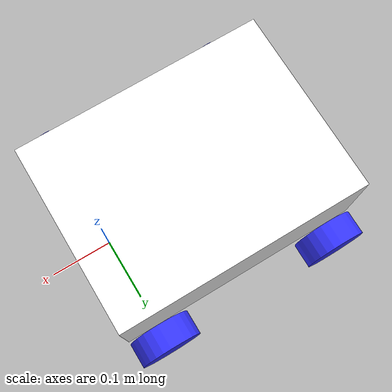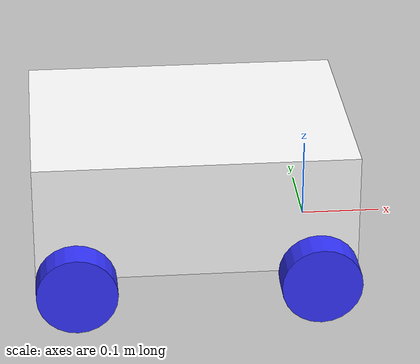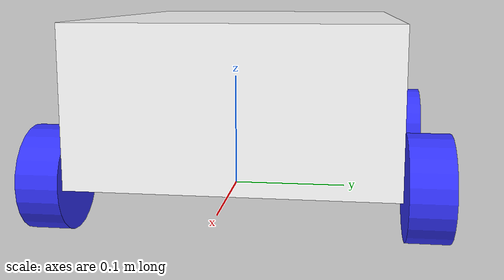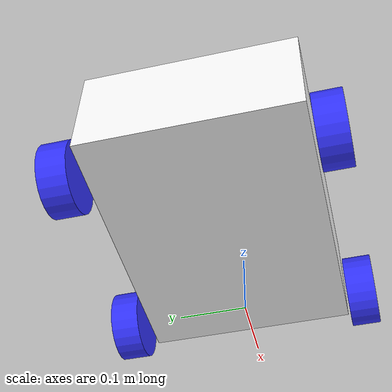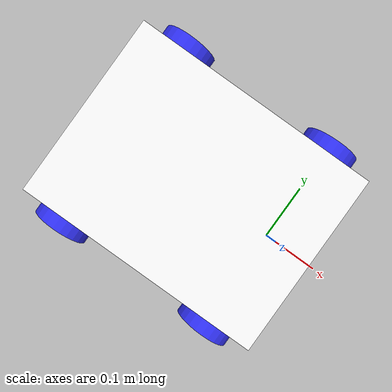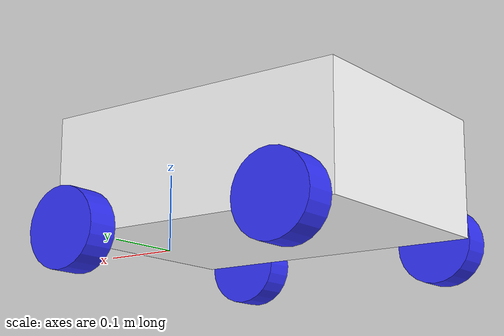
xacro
<?xml version="1.0"?>
<robot xmlns:xacro="http://www.ros.org/wiki/xacro"  name="robot">

    <xacro:arg name="use_ros2_control" default="true"/>
    <xacro:arg name="sim_mode" default="false"/>

    <xacro:include filename="robot_core.xacro" />

    <xacro:if value="$(arg use_ros2_control)">
        <xacro:include filename="ros2_control.xacro" />
    </xacro:if>
    <xacro:unless value="$(arg use_ros2_control)">
        <xacro:include filename="gazebo_control.xacro" />
    </xacro:unless>

</robot>

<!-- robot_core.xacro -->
<robot xmlns:xacro="http://www.ros.org/wiki/xacro"  >

    <xacro:include filename="inertial_macros.xacro"/>

    <material name="white">
        <color rgba="1 1 1 1" />
    </material>

    <material name="orange">
        <color rgba="1 0.3 0.1 1" />
    </material>

    <material name="blue">
        <color rgba="0.2 0.2 1 1" />
    </material>

    <material name="black">
        <color rgba="0 0 0 1" />
    </material>

    <!-- BASE LINK -->
    <link name="base_link">

    </link>

    <!-- CHASSIS LINK -->
    <joint name="chassis_joint" type="fixed">
        <parent link="base_link"/>
        <child link="chassis"/>
        <origin xyz="-0.3 0 0"/>
    </joint>

    <link name="chassis">
        <visual>
            <origin xyz = "0.15 0 0.075"/>
            <geometry>
                <box size="0.4 0.3 0.15"/>
            </geometry>
            <material name="white"/>
        </visual>
        <collision>
            <origin xyz = "0.15 0 0.075"/>
            <geometry>
                <box size="0.3 0.3 0.15"/>
            </geometry>
        </collision>
        <xacro:inertial_box mass="0.5" x="0.3" y="0.3" z="0.15">
            <origin xyz="0.15 0 0.075" rpy="0 0 0"/>
        </xacro:inertial_box>
    </link>

    <!-- FRONT LEFT WHEEL LINK -->
    <joint name="front_left_wheel_joint" type="continuous">
        <parent link="base_link"/>
        <child link="front_left_wheel"/>
        <origin xyz="0 0.175 0" rpy="-${pi/2} 0 0"/>
        <axis xyz="0 0 1"/>
    </joint>

    <link name="front_left_wheel">
        <visual>
            <geometry>
                <cylinder radius="0.05" length="0.04"/>
            </geometry>
            <material name="blue"/>
        </visual>
        <collision>
            <geometry>
                <cylinder radius="0.05" length="0.04"/>
            </geometry>
        </collision>
        <xacro:inertial_cylinder mass="0.1" length="0.04" radius="0.05">
            <origin xyz="0 0 0" rpy="0 0 0"/>
        </xacro:inertial_cylinder>
    </link>

    <!-- FRONT RIGHT WHEEL LINK -->
    <joint name="front_right_wheel_joint" type="continuous">
        <parent link="base_link"/>
        <child link="front_right_wheel"/>
        <origin xyz="0 -0.175 0" rpy="${pi/2} 0 0"/>
        <axis xyz="0 0 -1"/>
    </joint>

    <link name="front_right_wheel">
        <visual>
            <geometry>
                <cylinder radius="0.05" length="0.04"/>
            </geometry>
            <material name="blue"/>
        </visual>
        <collision>
            <geometry>
                <cylinder radius="0.05" length="0.04"/>
            </geometry>
        </collision>
        <xacro:inertial_cylinder mass="0.1" length="0.04" radius="0.05">
            <origin xyz="0 0 0" rpy="0 0 0"/>
        </xacro:inertial_cylinder>
    </link>

    <!-- BACK LEFT WHEEL LINK -->
    <joint name="back_left_wheel_joint" type="continuous">
        <parent link="base_link"/>
        <child link="back_left_wheel"/>
        <origin xyz="-0.3 0.175 0" rpy="-${pi/2} 0 0"/>
        <axis xyz="0 0 1"/>
    </joint>

    <link name="back_left_wheel">
        <visual>
            <geometry>
                <cylinder radius="0.05" length="0.04"/>
            </geometry>
            <material name="blue"/>
        </visual>
        <collision>
            <geometry>
                <cylinder radius="0.05" length="0.04"/>
            </geometry>
        </collision>
        <xacro:inertial_cylinder mass="0.1" length="0.04" radius="0.05">
            <origin xyz="0 0 0" rpy="0 0 0"/>
        </xacro:inertial_cylinder>
    </link>

    <!-- BACK RIGHT WHEEL LINK -->
    <joint name="back_right_wheel_joint" type="continuous">
        <parent link="base_link"/>
        <child link="back_right_wheel"/>
        <origin xyz="-0.3 -0.175 0" rpy="${pi/2} 0 0"/>
        <axis xyz="0 0 -1"/>
    </joint>

    <link name="back_right_wheel">
        <visual>
            <geometry>
                <cylinder radius="0.05" length="0.04"/>
            </geometry>
            <material name="blue"/>
        </visual>
        <collision>
            <geometry>
                <cylinder radius="0.05" length="0.04"/>
            </geometry>
        </collision>
        <xacro:inertial_cylinder mass="0.1" length="0.04" radius="0.05">
            <origin xyz="0 0 0" rpy="0 0 0"/>
        </xacro:inertial_cylinder>
    </link>

</robot>
